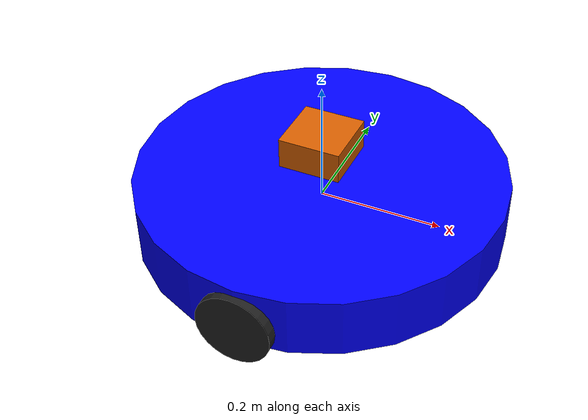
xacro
<?xml version="1.0"?>
<robot name="my_robot" xmlns:xacro="http://www.ros.org/wiki/xacro">

  <!-- Constants for robot dimensions -->
  <xacro:property name="wheel_radius" value="0.06"/>
  <xacro:property name="wheel_width" value="0.02"/>
  <xacro:property name="chassis_radius" value="0.3"/>
  <xacro:property name="chassis_height" value="0.1"/>
  <link name="base_footprint">
  <inertial>
    <mass value="0.0"/>
    <inertia ixx="0.0" ixy="0.0" ixz="0.0" iyy="0.0" iyz="0.0" izz="0.0"/>
  </inertial>
</link>
  <!-- Base Link -->
  <link name="base_link">
    <visual>
      <geometry>
        <cylinder radius="${chassis_radius}" length="${chassis_height}"/>
      </geometry>
      <material name="blue">
        <color rgba="0.0 0.0 1.0 1.0"/>
      </material>
    </visual>

    <collision>
      <geometry>
        <cylinder radius="${chassis_radius}" length="${chassis_height}"/>
      </geometry>
    </collision>

    <inertial>
      <mass value="10.0"/>
      <inertia
        ixx="0.05" ixy="0.0" ixz="0.0"
        iyy="0.05" iyz="0.0"
        izz="0.1"/>
    </inertial>
  </link>

  <!-- Left Wheel -->
  <link name="left_wheel">
    <visual>
      <geometry>
        <cylinder radius="${wheel_radius}" length="${wheel_width}"/>
      </geometry>
      <material name="black"/>
    </visual>

    <collision>
      <geometry>
        <cylinder radius="${wheel_radius}" length="${wheel_width}"/>
      </geometry>
    </collision>

    <inertial>
      <mass value="1.0"/>
      <inertia
        ixx="0.001" ixy="0.0" ixz="0.0"
        iyy="0.001" iyz="0.0"
        izz="0.001"/>
    </inertial>
  </link>

  <!-- Right Wheel -->
  <link name="right_wheel">
    <visual>
      <geometry>
        <cylinder radius="${wheel_radius}" length="${wheel_width}"/>
      </geometry>
      <material name="black"/>
    </visual>

    <collision>
      <geometry>
        <cylinder radius="${wheel_radius}" length="${wheel_width}"/>
      </geometry>
    </collision>

    <inertial>
      <mass value="1.0"/>
      <inertia
        ixx="0.001" ixy="0.0" ixz="0.0"
        iyy="0.001" iyz="0.0"
        izz="0.001"/>
    </inertial>
  </link>
  <!-- Front Wheel -->
  <link name="front_wheel">
  <visual>
    <geometry>
      <sphere radius="0.025"/>
    </geometry>
    <material name="black"/>
  </visual>

  <collision>
    <geometry>
      <sphere radius="0.025"/>
    </geometry>
  </collision>

  <inertial>
    <mass value="1.0"/>
    <inertia
      ixx="0.001" ixy="0.0" ixz="0.0"
      iyy="0.001" iyz="0.0"
      izz="0.001"/>
  </inertial>
</link>

  <link name="lidar_link">
    <visual>
      <geometry>
        <box size="0.1 0.1 0.05"/> <!-- Size to be adjusted -->
      </geometry>
    </visual>
    <inertial>
      <mass value="1.0"/> <!-- Adjust mass -->
      <inertia ixx="0.001" ixy="0" ixz="0" iyy="0.001" iyz="0" izz="0.001"/> <!-- Adjust inertia -->
    </inertial>
  </link>

  <!-- Joints -->
  <joint name="base_footprint_joint" type="fixed">
  <parent link="base_link"/>
  <child link="base_footprint"/>
  <origin xyz="0 -0.2 0" rpy="0 0 0"/> <!-- Adjust the origin if necessary -->
</joint>
  <!-- Left Wheel Joint -->
  <joint name="left_wheel_joint" type="continuous">
    <parent link="base_link"/>
    <child link="left_wheel"/>
    <origin xyz="0.0 0.3 -0.02" rpy="1.5707 0 0"/>
    <axis xyz="0 0 1"/>
  </joint>

  <!-- Right Wheel Joint -->
  <joint name="right_wheel_joint" type="continuous">
    <parent link="base_link"/>
    <child link="right_wheel"/>
    <origin xyz="0 -0.3 -0.02" rpy="1.5707 0 0"/>
    <axis xyz="0 0 1"/>
  </joint>

  <!-- Front Joint -->
  <joint name="front_wheel_joint" type="fixed">
    <parent link="base_link"/>
    <child link="front_wheel"/>
    <origin xyz="-0.25 0 -0.055" rpy="0 0 0"/> <!-- Adjust xyz as per the desired position -->
  </joint>

  <!-- Servo Motor Joint -->
  <joint name="servo_joint" type="revolute">
    <parent link="base_link"/>
    <child link="lidar_link"/>
    <origin xyz="0 0 0.1" rpy="0 0 0"/> <!-- Position to be adjusted -->
    <axis xyz="1 0 0"/>
    <limit lower="-1.57" upper="1.57" effort="5" velocity="1"/>
  </joint>

<!-- Lidar Link -->

  <!-- Transmission for wheels -->
  <transmission name="left_wheel_trans">
    <type>transmission_interface/SimpleTransmission</type>
    <joint name="left_wheel_joint">
      <hardwareInterface>VelocityJointInterface</hardwareInterface>
    </joint>
    <actuator name="left_wheel_motor">
      <hardwareInterface>VelocityJointInterface</hardwareInterface>
      <mechanicalReduction>1</mechanicalReduction>
    </actuator>
  </transmission>

<transmission name="right_wheel_trans">
    <type>transmission_interface/SimpleTransmission</type>
    <joint name="right_wheel_joint">
      <hardwareInterface>VelocityJointInterface</hardwareInterface>
    </joint>
    <actuator name="right_wheel_motor">
      <hardwareInterface>VelocityJointInterface</hardwareInterface>
      <mechanicalReduction>1</mechanicalReduction>
    </actuator>
  </transmission>
  <!-- Transmission for Servo Motor -->
<transmission name="servo_transmission">
  <type>transmission_interface/SimpleTransmission</type>
  <joint name="servo_joint">
    <hardwareInterface>PositionJointInterface</hardwareInterface>
  </joint>
  <actuator name="servo_motor">
    <hardwareInterface>PositionJointInterface</hardwareInterface>
    <mechanicalReduction>1</mechanicalReduction>
  </actuator>
</transmission>

<gazebo>
    <plugin name="gazebo_ros_control" filename="libgazebo_ros_control.so">
      <robotNamespace>/</robotNamespace>
      <robotParam>robot_description</robotParam>
      <controller name=" diff_drive_controller servo_controller"/>
    </plugin>
    <plugin name="p3d_base_controller" filename="libgazebo_ros_p3d.so">
      <alwaysOn>true</alwaysOn>
      <updateRate>50.0</updateRate>
      <bodyName>base_link</bodyName>
      <topicName>world</topicName>
      <publishOdomTF>true</publishOdomTF>
      <publishTf>true</publishTf>
      <gaussianNoise>0.01</gaussianNoise>
      <frameName>world</frameName>
      <xyzOffsets>0 0 0</xyzOffsets>
      <rpyOffsets>0 0 0</rpyOffsets>
</plugin>
  </gazebo>

<gazebo reference="lidar_link">

  <sensor type="ray" name="lidar_sensor">
    <pose>0 0 0 0 0 0</pose>
    <visualize>true</visualize>
    <update_rate>10</update_rate>
    <ray>
      <scan>
        <horizontal>
          <samples>720</samples>
          <resolution>1</resolution>
          <min_angle>-3.14</min_angle>
          <max_angle>3.14</max_angle>
        </horizontal>
      </scan>
      <range>
        <min>0.1</min>
        <max>12</max>
        <resolution>0.01</resolution>
      </range>
    </ray>
    <plugin name="gazebo_ros_laser_controller" filename="libgazebo_ros_laser.so">
      <topicName>/scan</topicName>
      <frameName>lidar_link</frameName>
    </plugin>
  </sensor>
</gazebo>
</robot>
